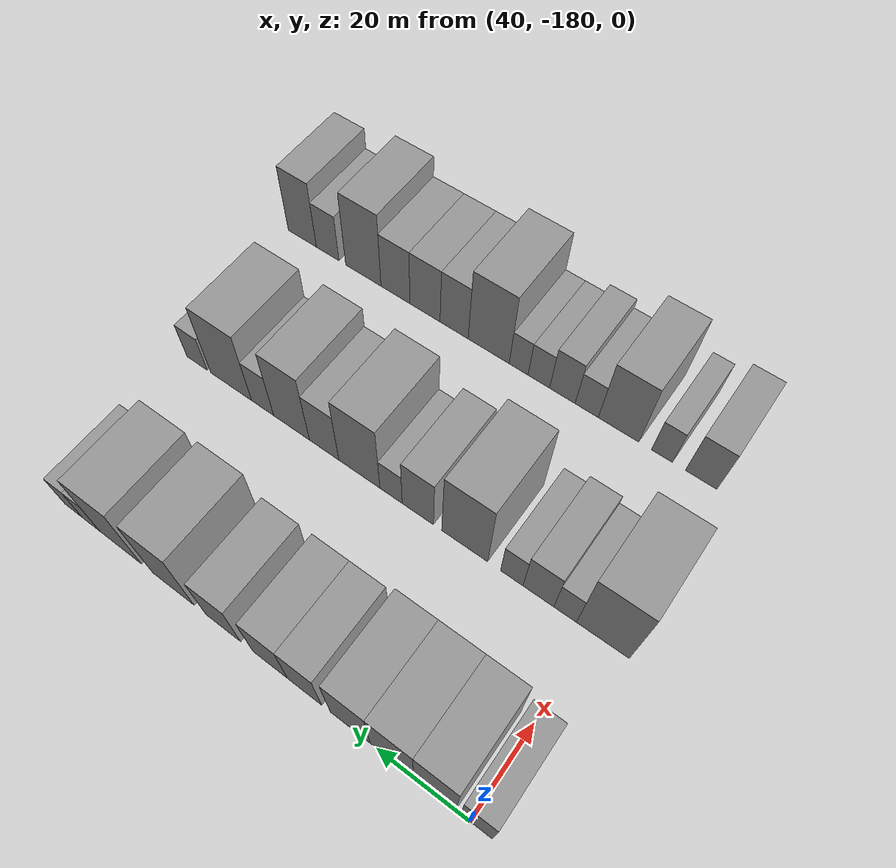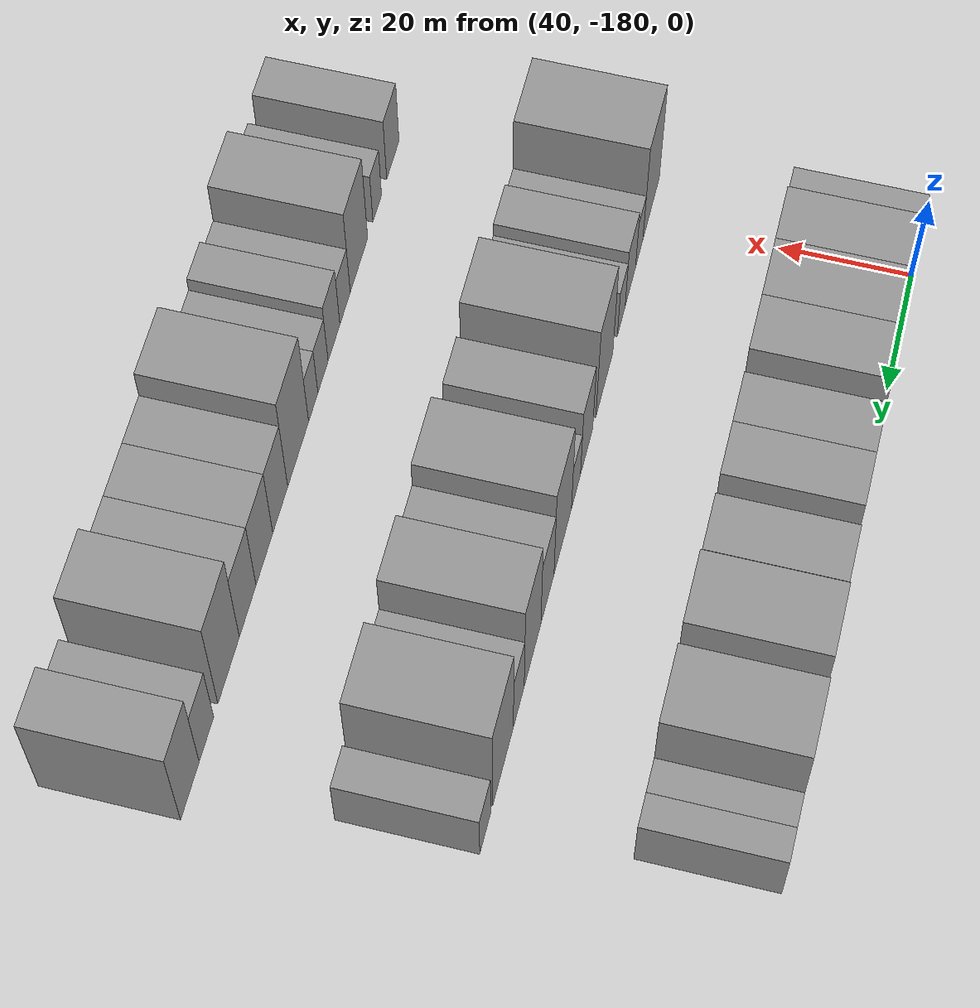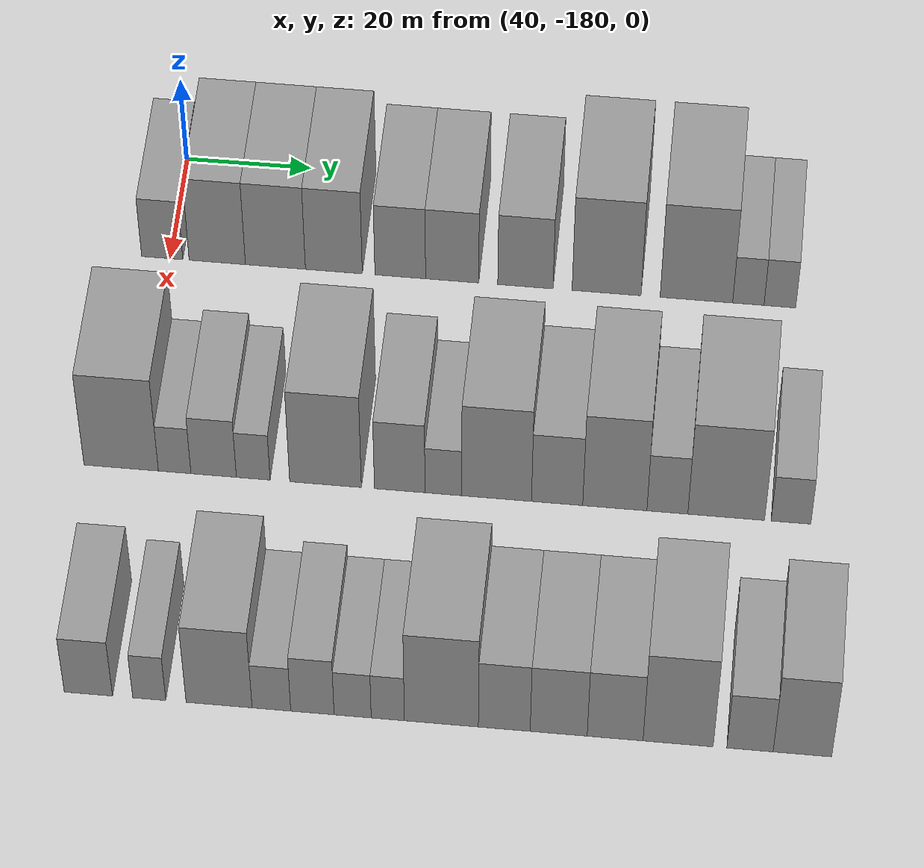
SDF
<sdf version="1.6">
 <world name="default">
  <model name="building_47">
   <static>1</static>
   <pose>50.0000 -181.3081 0 0.000000 0.000000 0.000000</pose>
   <link name="link">
    <pose>0 0 7.50 0 0 0</pose>
    <collision name="collision"><geometry><box><size>20.0000 6.5465 15.0000</size></box></geometry></collision>
    <visual name="visual">
     <cast_shadows>0</cast_shadows>
     <geometry><box><size>20.0000 6.5465 15.0000</size></box></geometry>
     <material>
      <script>
       <uri>model://grey_wall/materials/scripts</uri>
       <uri>model://grey_wall/materials/textures</uri>
       <name>vrc/grey_wall</name>
      </script>
     </material>
    </visual>
   </link>
  </model>
  <model name="building_48">
   <static>1</static>
   <pose>50.0000 -172.5631 0 0.000000 0.000000 0.000000</pose>
   <link name="link">
    <pose>0 0 10.50 0 0 0</pose>
    <collision name="collision"><geometry><box><size>20.0000 8.9435 21.0000</size></box></geometry></collision>
    <visual name="visual">
     <cast_shadows>0</cast_shadows>
     <geometry><box><size>20.0000 8.9435 21.0000</size></box></geometry>
     <material>
      <script>
       <uri>model://grey_wall/materials/scripts</uri>
       <uri>model://grey_wall/materials/textures</uri>
       <name>vrc/grey_wall</name>
      </script>
     </material>
    </visual>
   </link>
  </model>
  <model name="building_49">
   <static>1</static>
   <pose>50.0000 -163.3328 0 0.000000 0.000000 0.000000</pose>
   <link name="link">
    <pose>0 0 10.50 0 0 0</pose>
    <collision name="collision"><geometry><box><size>20.0000 9.5170 21.0000</size></box></geometry></collision>
    <visual name="visual">
     <cast_shadows>0</cast_shadows>
     <geometry><box><size>20.0000 9.5170 21.0000</size></box></geometry>
     <material>
      <script>
       <uri>model://grey_wall/materials/scripts</uri>
       <uri>model://grey_wall/materials/textures</uri>
       <name>vrc/grey_wall</name>
      </script>
     </material>
    </visual>
   </link>
  </model>
  <model name="building_50">
   <static>1</static>
   <pose>50.0000 -154.0710 0 0.000000 0.000000 0.000000</pose>
   <link name="link">
    <pose>0 0 10.50 0 0 0</pose>
    <collision name="collision"><geometry><box><size>20.0000 9.0066 21.0000</size></box></geometry></collision>
    <visual name="visual">
     <cast_shadows>0</cast_shadows>
     <geometry><box><size>20.0000 9.0066 21.0000</size></box></geometry>
     <material>
      <script>
       <uri>model://grey_wall/materials/scripts</uri>
       <uri>model://grey_wall/materials/textures</uri>
       <name>vrc/grey_wall</name>
      </script>
     </material>
    </visual>
   </link>
  </model>
  <model name="building_51">
   <static>1</static>
   <pose>50.0000 -143.5659 0 0.000000 0.000000 0.000000</pose>
   <link name="link">
    <pose>0 0 9.00 0 0 0</pose>
    <collision name="collision"><geometry><box><size>20.0000 8.0035 18.0000</size></box></geometry></collision>
    <visual name="visual">
     <cast_shadows>0</cast_shadows>
     <geometry><box><size>20.0000 8.0035 18.0000</size></box></geometry>
     <material>
      <script>
       <uri>model://grey_wall/materials/scripts</uri>
       <uri>model://grey_wall/materials/textures</uri>
       <name>vrc/grey_wall</name>
      </script>
     </material>
    </visual>
   </link>
  </model>
  <model name="building_52">
   <static>1</static>
   <pose>50.0000 -135.3710 0 0.000000 0.000000 0.000000</pose>
   <link name="link">
    <pose>0 0 9.00 0 0 0</pose>
    <collision name="collision"><geometry><box><size>20.0000 8.3865 18.0000</size></box></geometry></collision>
    <visual name="visual">
     <cast_shadows>0</cast_shadows>
     <geometry><box><size>20.0000 8.3865 18.0000</size></box></geometry>
     <material>
      <script>
       <uri>model://grey_wall/materials/scripts</uri>
       <uri>model://grey_wall/materials/textures</uri>
       <name>vrc/grey_wall</name>
      </script>
     </material>
    </visual>
   </link>
  </model>
  <model name="building_53">
   <static>1</static>
   <pose>50.0000 -123.8219 0 0.000000 0.000000 0.000000</pose>
   <link name="link">
    <pose>0 0 9.00 0 0 0</pose>
    <collision name="collision"><geometry><box><size>20.0000 8.7116 18.0000</size></box></geometry></collision>
    <visual name="visual">
     <cast_shadows>0</cast_shadows>
     <geometry><box><size>20.0000 8.7116 18.0000</size></box></geometry>
     <material>
      <script>
       <uri>model://grey_wall/materials/scripts</uri>
       <uri>model://grey_wall/materials/textures</uri>
       <name>vrc/grey_wall</name>
      </script>
     </material>
    </visual>
   </link>
  </model>
  <model name="building_54">
   <static>1</static>
   <pose>50.0000 -111.0448 0 0.000000 0.000000 0.000000</pose>
   <link name="link">
    <pose>0 0 12.00 0 0 0</pose>
    <collision name="collision"><geometry><box><size>20.0000 10.8428 24.0000</size></box></geometry></collision>
    <visual name="visual">
     <cast_shadows>0</cast_shadows>
     <geometry><box><size>20.0000 10.8428 24.0000</size></box></geometry>
     <material>
      <script>
       <uri>model://grey_wall/materials/scripts</uri>
       <uri>model://grey_wall/materials/textures</uri>
       <name>vrc/grey_wall</name>
      </script>
     </material>
    </visual>
   </link>
  </model>
  <model name="building_55">
   <static>1</static>
   <pose>50.0000 -96.9355 0 0.000000 0.000000 0.000000</pose>
   <link name="link">
    <pose>0 0 12.00 0 0 0</pose>
    <collision name="collision"><geometry><box><size>20.0000 11.3757 24.0000</size></box></geometry></collision>
    <visual name="visual">
     <cast_shadows>0</cast_shadows>
     <geometry><box><size>20.0000 11.3757 24.0000</size></box></geometry>
     <material>
      <script>
       <uri>model://grey_wall/materials/scripts</uri>
       <uri>model://grey_wall/materials/textures</uri>
       <name>vrc/grey_wall</name>
      </script>
     </material>
    </visual>
   </link>
  </model>
  <model name="building_56">
   <static>1</static>
   <pose>50.0000 -88.7897 0 0.000000 0.000000 0.000000</pose>
   <link name="link">
    <pose>0 0 6.00 0 0 0</pose>
    <collision name="collision"><geometry><box><size>20.0000 4.9160 12.0000</size></box></geometry></collision>
    <visual name="visual">
     <cast_shadows>0</cast_shadows>
     <geometry><box><size>20.0000 4.9160 12.0000</size></box></geometry>
     <material>
      <script>
       <uri>model://grey_wall/materials/scripts</uri>
       <uri>model://grey_wall/materials/textures</uri>
       <name>vrc/grey_wall</name>
      </script>
     </material>
    </visual>
   </link>
  </model>
  <model name="building_57">
   <static>1</static>
   <pose>50.0000 -83.8516 0 0.000000 0.000000 0.000000</pose>
   <link name="link">
    <pose>0 0 6.00 0 0 0</pose>
    <collision name="collision"><geometry><box><size>20.0000 4.9602 12.0000</size></box></geometry></collision>
    <visual name="visual">
     <cast_shadows>0</cast_shadows>
     <geometry><box><size>20.0000 4.9602 12.0000</size></box></geometry>
     <material>
      <script>
       <uri>model://grey_wall/materials/scripts</uri>
       <uri>model://grey_wall/materials/textures</uri>
       <name>vrc/grey_wall</name>
      </script>
     </material>
    </visual>
   </link>
  </model>
  <model name="building_188">
   <static>1</static>
   <pose>90.0000 -182.1443 0 0.000000 0.000000 0.000000</pose>
   <link name="link">
    <pose>0 0 12.00 0 0 0</pose>
    <collision name="collision"><geometry><box><size>20.0000 11.4341 24.0000</size></box></geometry></collision>
    <visual name="visual">
     <cast_shadows>0</cast_shadows>
     <geometry><box><size>20.0000 11.4341 24.0000</size></box></geometry>
     <material>
      <script>
       <uri>model://grey_wall/materials/scripts</uri>
       <uri>model://grey_wall/materials/textures</uri>
       <name>vrc/grey_wall</name>
      </script>
     </material>
    </visual>
   </link>
  </model>
  <model name="building_189">
   <static>1</static>
   <pose>90.0000 -173.9284 0 0.000000 0.000000 0.000000</pose>
   <link name="link">
    <pose>0 0 6.00 0 0 0</pose>
    <collision name="collision"><geometry><box><size>20.0000 4.9978 12.0000</size></box></geometry></collision>
    <visual name="visual">
     <cast_shadows>0</cast_shadows>
     <geometry><box><size>20.0000 4.9978 12.0000</size></box></geometry>
     <material>
      <script>
       <uri>model://grey_wall/materials/scripts</uri>
       <uri>model://grey_wall/materials/textures</uri>
       <name>vrc/grey_wall</name>
      </script>
     </material>
    </visual>
   </link>
  </model>
  <model name="building_190">
   <static>1</static>
   <pose>90.0000 -167.9443 0 0.000000 0.000000 0.000000</pose>
   <link name="link">
    <pose>0 0 7.50 0 0 0</pose>
    <collision name="collision"><geometry><box><size>20.0000 6.9704 15.0000</size></box></geometry></collision>
    <visual name="visual">
     <cast_shadows>0</cast_shadows>
     <geometry><box><size>20.0000 6.9704 15.0000</size></box></geometry>
     <material>
      <script>
       <uri>model://grey_wall/materials/scripts</uri>
       <uri>model://grey_wall/materials/textures</uri>
       <name>vrc/grey_wall</name>
      </script>
     </material>
    </visual>
   </link>
  </model>
  <model name="building_191">
   <static>1</static>
   <pose>90.0000 -161.8737 0 0.000000 0.000000 0.000000</pose>
   <link name="link">
    <pose>0 0 6.00 0 0 0</pose>
    <collision name="collision"><geometry><box><size>20.0000 5.1708 12.0000</size></box></geometry></collision>
    <visual name="visual">
     <cast_shadows>0</cast_shadows>
     <geometry><box><size>20.0000 5.1708 12.0000</size></box></geometry>
     <material>
      <script>
       <uri>model://grey_wall/materials/scripts</uri>
       <uri>model://grey_wall/materials/textures</uri>
       <name>vrc/grey_wall</name>
      </script>
     </material>
    </visual>
   </link>
  </model>
  <model name="building_192">
   <static>1</static>
   <pose>90.0000 -150.8051 0 0.000000 0.000000 0.000000</pose>
   <link name="link">
    <pose>0 0 12.00 0 0 0</pose>
    <collision name="collision"><geometry><box><size>20.0000 10.9663 24.0000</size></box></geometry></collision>
    <visual name="visual">
     <cast_shadows>0</cast_shadows>
     <geometry><box><size>20.0000 10.9663 24.0000</size></box></geometry>
     <material>
      <script>
       <uri>model://grey_wall/materials/scripts</uri>
       <uri>model://grey_wall/materials/textures</uri>
       <name>vrc/grey_wall</name>
      </script>
     </material>
    </visual>
   </link>
  </model>
  <model name="building_193">
   <static>1</static>
   <pose>90.0000 -139.4650 0 0.000000 0.000000 0.000000</pose>
   <link name="link">
    <pose>0 0 9.00 0 0 0</pose>
    <collision name="collision"><geometry><box><size>20.0000 7.7139 18.0000</size></box></geometry></collision>
    <visual name="visual">
     <cast_shadows>0</cast_shadows>
     <geometry><box><size>20.0000 7.7139 18.0000</size></box></geometry>
     <material>
      <script>
       <uri>model://grey_wall/materials/scripts</uri>
       <uri>model://grey_wall/materials/textures</uri>
       <name>vrc/grey_wall</name>
      </script>
     </material>
    </visual>
   </link>
  </model>
  <model name="building_194">
   <static>1</static>
   <pose>90.0000 -132.8114 0 0.000000 0.000000 0.000000</pose>
   <link name="link">
    <pose>0 0 6.00 0 0 0</pose>
    <collision name="collision"><geometry><box><size>20.0000 5.5934 12.0000</size></box></geometry></collision>
    <visual name="visual">
     <cast_shadows>0</cast_shadows>
     <geometry><box><size>20.0000 5.5934 12.0000</size></box></geometry>
     <material>
      <script>
       <uri>model://grey_wall/materials/scripts</uri>
       <uri>model://grey_wall/materials/textures</uri>
       <name>vrc/grey_wall</name>
      </script>
     </material>
    </visual>
   </link>
  </model>
  <model name="building_195">
   <static>1</static>
   <pose>90.0000 -124.7039 0 0.000000 0.000000 0.000000</pose>
   <link name="link">
    <pose>0 0 12.00 0 0 0</pose>
    <collision name="collision"><geometry><box><size>20.0000 10.6215 24.0000</size></box></geometry></collision>
    <visual name="visual">
     <cast_shadows>0</cast_shadows>
     <geometry><box><size>20.0000 10.6215 24.0000</size></box></geometry>
     <material>
      <script>
       <uri>model://grey_wall/materials/scripts</uri>
       <uri>model://grey_wall/materials/textures</uri>
       <name>vrc/grey_wall</name>
      </script>
     </material>
    </visual>
   </link>
  </model>
  <model name="building_196">
   <static>1</static>
   <pose>90.0000 -115.4978 0 0.000000 0.000000 0.000000</pose>
   <link name="link">
    <pose>0 0 9.00 0 0 0</pose>
    <collision name="collision"><geometry><box><size>20.0000 7.7908 18.0000</size></box></geometry></collision>
    <visual name="visual">
     <cast_shadows>0</cast_shadows>
     <geometry><box><size>20.0000 7.7908 18.0000</size></box></geometry>
     <material>
      <script>
       <uri>model://grey_wall/materials/scripts</uri>
       <uri>model://grey_wall/materials/textures</uri>
       <name>vrc/grey_wall</name>
      </script>
     </material>
    </visual>
   </link>
  </model>
  <model name="building_197">
   <static>1</static>
   <pose>90.0000 -106.7278 0 0.000000 0.000000 0.000000</pose>
   <link name="link">
    <pose>0 0 12.00 0 0 0</pose>
    <collision name="collision"><geometry><box><size>20.0000 9.7493 24.0000</size></box></geometry></collision>
    <visual name="visual">
     <cast_shadows>0</cast_shadows>
     <geometry><box><size>20.0000 9.7493 24.0000</size></box></geometry>
     <material>
      <script>
       <uri>model://grey_wall/materials/scripts</uri>
       <uri>model://grey_wall/materials/textures</uri>
       <name>vrc/grey_wall</name>
      </script>
     </material>
    </visual>
   </link>
  </model>
  <model name="building_198">
   <static>1</static>
   <pose>90.0000 -98.7552 0 0.000000 0.000000 0.000000</pose>
   <link name="link">
    <pose>0 0 7.50 0 0 0</pose>
    <collision name="collision"><geometry><box><size>20.0000 6.1960 15.0000</size></box></geometry></collision>
    <visual name="visual">
     <cast_shadows>0</cast_shadows>
     <geometry><box><size>20.0000 6.1960 15.0000</size></box></geometry>
     <material>
      <script>
       <uri>model://grey_wall/materials/scripts</uri>
       <uri>model://grey_wall/materials/textures</uri>
       <name>vrc/grey_wall</name>
      </script>
     </material>
    </visual>
   </link>
  </model>
  <model name="building_199">
   <static>1</static>
   <pose>90.0000 -89.8446 0 0.000000 0.000000 0.000000</pose>
   <link name="link">
    <pose>0 0 12.00 0 0 0</pose>
    <collision name="collision"><geometry><box><size>20.0000 11.6251 24.0000</size></box></geometry></collision>
    <visual name="visual">
     <cast_shadows>0</cast_shadows>
     <geometry><box><size>20.0000 11.6251 24.0000</size></box></geometry>
     <material>
      <script>
       <uri>model://grey_wall/materials/scripts</uri>
       <uri>model://grey_wall/materials/textures</uri>
       <name>vrc/grey_wall</name>
      </script>
     </material>
    </visual>
   </link>
  </model>
  <model name="building_200">
   <static>1</static>
   <pose>90.0000 -80.0395 0 0.000000 0.000000 0.000000</pose>
   <link name="link">
    <pose>0 0 6.00 0 0 0</pose>
    <collision name="collision"><geometry><box><size>20.0000 5.9850 12.0000</size></box></geometry></collision>
    <visual name="visual">
     <cast_shadows>0</cast_shadows>
     <geometry><box><size>20.0000 5.9850 12.0000</size></box></geometry>
     <material>
      <script>
       <uri>model://grey_wall/materials/scripts</uri>
       <uri>model://grey_wall/materials/textures</uri>
       <name>vrc/grey_wall</name>
      </script>
     </material>
    </visual>
   </link>
  </model>
  <model name="building_324">
   <static>1</static>
   <pose>130.0000 -181.3081 0 0.000000 0.000000 0.000000</pose>
   <link name="link">
    <pose>0 0 7.50 0 0 0</pose>
    <collision name="collision"><geometry><box><size>20.0000 7.1602 15.0000</size></box></geometry></collision>
    <visual name="visual">
     <cast_shadows>0</cast_shadows>
     <geometry><box><size>20.0000 7.1602 15.0000</size></box></geometry>
     <material>
      <script>
       <uri>model://grey_wall/materials/scripts</uri>
       <uri>model://grey_wall/materials/textures</uri>
       <name>vrc/grey_wall</name>
      </script>
     </material>
    </visual>
   </link>
  </model>
  <model name="building_325">
   <static>1</static>
   <pose>130.0000 -172.2784 0 0.000000 0.000000 0.000000</pose>
   <link name="link">
    <pose>0 0 6.00 0 0 0</pose>
    <collision name="collision"><geometry><box><size>20.0000 4.8992 12.0000</size></box></geometry></collision>
    <visual name="visual">
     <cast_shadows>0</cast_shadows>
     <geometry><box><size>20.0000 4.8992 12.0000</size></box></geometry>
     <material>
      <script>
       <uri>model://grey_wall/materials/scripts</uri>
       <uri>model://grey_wall/materials/textures</uri>
       <name>vrc/grey_wall</name>
      </script>
     </material>
    </visual>
   </link>
  </model>
  <model name="building_326">
   <static>1</static>
   <pose>130.0000 -161.9482 0 0.000000 0.000000 0.000000</pose>
   <link name="link">
    <pose>0 0 10.50 0 0 0</pose>
    <collision name="collision"><geometry><box><size>20.0000 9.7613 21.0000</size></box></geometry></collision>
    <visual name="visual">
     <cast_shadows>0</cast_shadows>
     <geometry><box><size>20.0000 9.7613 21.0000</size></box></geometry>
     <material>
      <script>
       <uri>model://grey_wall/materials/scripts</uri>
       <uri>model://grey_wall/materials/textures</uri>
       <name>vrc/grey_wall</name>
      </script>
     </material>
    </visual>
   </link>
  </model>
  <model name="building_327">
   <static>1</static>
   <pose>130.0000 -154.2139 0 0.000000 0.000000 0.000000</pose>
   <link name="link">
    <pose>0 0 6.00 0 0 0</pose>
    <collision name="collision"><geometry><box><size>20.0000 5.7072 12.0000</size></box></geometry></collision>
    <visual name="visual">
     <cast_shadows>0</cast_shadows>
     <geometry><box><size>20.0000 5.7072 12.0000</size></box></geometry>
     <material>
      <script>
       <uri>model://grey_wall/materials/scripts</uri>
       <uri>model://grey_wall/materials/textures</uri>
       <name>vrc/grey_wall</name>
      </script>
     </material>
    </visual>
   </link>
  </model>
  <model name="building_328">
   <static>1</static>
   <pose>130.0000 -148.1591 0 0.000000 0.000000 0.000000</pose>
   <link name="link">
    <pose>0 0 7.50 0 0 0</pose>
    <collision name="collision"><geometry><box><size>20.0000 6.4026 15.0000</size></box></geometry></collision>
    <visual name="visual">
     <cast_shadows>0</cast_shadows>
     <geometry><box><size>20.0000 6.4026 15.0000</size></box></geometry>
     <material>
      <script>
       <uri>model://grey_wall/materials/scripts</uri>
       <uri>model://grey_wall/materials/textures</uri>
       <name>vrc/grey_wall</name>
      </script>
     </material>
    </visual>
   </link>
  </model>
  <model name="building_329">
   <static>1</static>
   <pose>130.0000 -142.2230 0 0.000000 0.000000 0.000000</pose>
   <link name="link">
    <pose>0 0 6.00 0 0 0</pose>
    <collision name="collision"><geometry><box><size>20.0000 5.4696 12.0000</size></box></geometry></collision>
    <visual name="visual">
     <cast_shadows>0</cast_shadows>
     <geometry><box><size>20.0000 5.4696 12.0000</size></box></geometry>
     <material>
      <script>
       <uri>model://grey_wall/materials/scripts</uri>
       <uri>model://grey_wall/materials/textures</uri>
       <name>vrc/grey_wall</name>
      </script>
     </material>
    </visual>
   </link>
  </model>
  <model name="building_330">
   <static>1</static>
   <pose>130.0000 -137.0396 0 0.000000 0.000000 0.000000</pose>
   <link name="link">
    <pose>0 0 6.00 0 0 0</pose>
    <collision name="collision"><geometry><box><size>20.0000 4.8972 12.0000</size></box></geometry></collision>
    <visual name="visual">
     <cast_shadows>0</cast_shadows>
     <geometry><box><size>20.0000 4.8972 12.0000</size></box></geometry>
     <material>
      <script>
       <uri>model://grey_wall/materials/scripts</uri>
       <uri>model://grey_wall/materials/textures</uri>
       <name>vrc/grey_wall</name>
      </script>
     </material>
    </visual>
   </link>
  </model>
  <model name="building_331">
   <static>1</static>
   <pose>130.0000 -129.1559 0 0.000000 0.000000 0.000000</pose>
   <link name="link">
    <pose>0 0 12.00 0 0 0</pose>
    <collision name="collision"><geometry><box><size>20.0000 10.8701 24.0000</size></box></geometry></collision>
    <visual name="visual">
     <cast_shadows>0</cast_shadows>
     <geometry><box><size>20.0000 10.8701 24.0000</size></box></geometry>
     <material>
      <script>
       <uri>model://grey_wall/materials/scripts</uri>
       <uri>model://grey_wall/materials/textures</uri>
       <name>vrc/grey_wall</name>
      </script>
     </material>
    </visual>
   </link>
  </model>
  <model name="building_332">
   <static>1</static>
   <pose>130.0000 -119.9130 0 0.000000 0.000000 0.000000</pose>
   <link name="link">
    <pose>0 0 9.00 0 0 0</pose>
    <collision name="collision"><geometry><box><size>20.0000 7.6157 18.0000</size></box></geometry></collision>
    <visual name="visual">
     <cast_shadows>0</cast_shadows>
     <geometry><box><size>20.0000 7.6157 18.0000</size></box></geometry>
     <material>
      <script>
       <uri>model://grey_wall/materials/scripts</uri>
       <uri>model://grey_wall/materials/textures</uri>
       <name>vrc/grey_wall</name>
      </script>
     </material>
    </visual>
   </link>
  </model>
  <model name="building_333">
   <static>1</static>
   <pose>130.0000 -111.9300 0 0.000000 0.000000 0.000000</pose>
   <link name="link">
    <pose>0 0 9.00 0 0 0</pose>
    <collision name="collision"><geometry><box><size>20.0000 8.3504 18.0000</size></box></geometry></collision>
    <visual name="visual">
     <cast_shadows>0</cast_shadows>
     <geometry><box><size>20.0000 8.3504 18.0000</size></box></geometry>
     <material>
      <script>
       <uri>model://grey_wall/materials/scripts</uri>
       <uri>model://grey_wall/materials/textures</uri>
       <name>vrc/grey_wall</name>
      </script>
     </material>
    </visual>
   </link>
  </model>
  <model name="building_334">
   <static>1</static>
   <pose>130.0000 -103.6656 0 0.000000 0.000000 0.000000</pose>
   <link name="link">
    <pose>0 0 9.00 0 0 0</pose>
    <collision name="collision"><geometry><box><size>20.0000 8.1784 18.0000</size></box></geometry></collision>
    <visual name="visual">
     <cast_shadows>0</cast_shadows>
     <geometry><box><size>20.0000 8.1784 18.0000</size></box></geometry>
     <material>
      <script>
       <uri>model://grey_wall/materials/scripts</uri>
       <uri>model://grey_wall/materials/textures</uri>
       <name>vrc/grey_wall</name>
      </script>
     </material>
    </visual>
   </link>
  </model>
  <model name="building_335">
   <static>1</static>
   <pose>130.0000 -94.4496 0 0.000000 0.000000 0.000000</pose>
   <link name="link">
    <pose>0 0 12.00 0 0 0</pose>
    <collision name="collision"><geometry><box><size>20.0000 10.2536 24.0000</size></box></geometry></collision>
    <visual name="visual">
     <cast_shadows>0</cast_shadows>
     <geometry><box><size>20.0000 10.2536 24.0000</size></box></geometry>
     <material>
      <script>
       <uri>model://grey_wall/materials/scripts</uri>
       <uri>model://grey_wall/materials/textures</uri>
       <name>vrc/grey_wall</name>
      </script>
     </material>
    </visual>
   </link>
  </model>
  <model name="building_336">
   <static>1</static>
   <pose>130.0000 -83.9489 0 0.000000 0.000000 0.000000</pose>
   <link name="link">
    <pose>0 0 7.50 0 0 0</pose>
    <collision name="collision"><geometry><box><size>20.0000 6.7476 15.0000</size></box></geometry></collision>
    <visual name="visual">
     <cast_shadows>0</cast_shadows>
     <geometry><box><size>20.0000 6.7476 15.0000</size></box></geometry>
     <material>
      <script>
       <uri>model://grey_wall/materials/scripts</uri>
       <uri>model://grey_wall/materials/textures</uri>
       <name>vrc/grey_wall</name>
      </script>
     </material>
    </visual>
   </link>
  </model>
  <model name="building_337">
   <static>1</static>
   <pose>130.0000 -76.3089 0 0.000000 0.000000 0.000000</pose>
   <link name="link">
    <pose>0 0 10.50 0 0 0</pose>
    <collision name="collision"><geometry><box><size>20.0000 8.5325 21.0000</size></box></geometry></collision>
    <visual name="visual">
     <cast_shadows>0</cast_shadows>
     <geometry><box><size>20.0000 8.5325 21.0000</size></box></geometry>
     <material>
      <script>
       <uri>model://grey_wall/materials/scripts</uri>
       <uri>model://grey_wall/materials/textures</uri>
       <name>vrc/grey_wall</name>
      </script>
     </material>
    </visual>
   </link>
  </model>
 </world>
</sdf>
